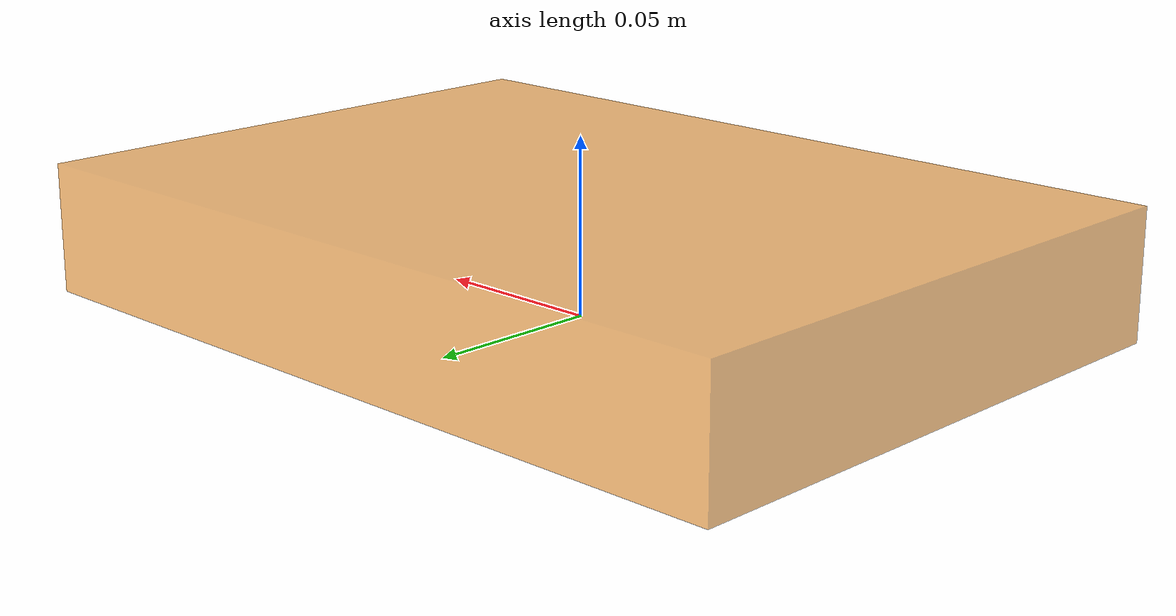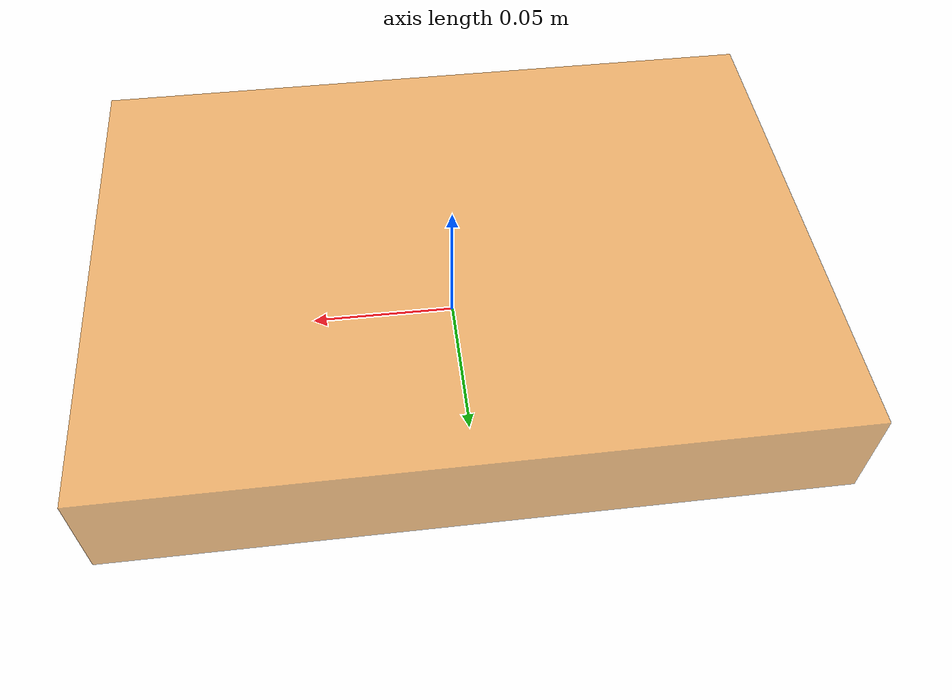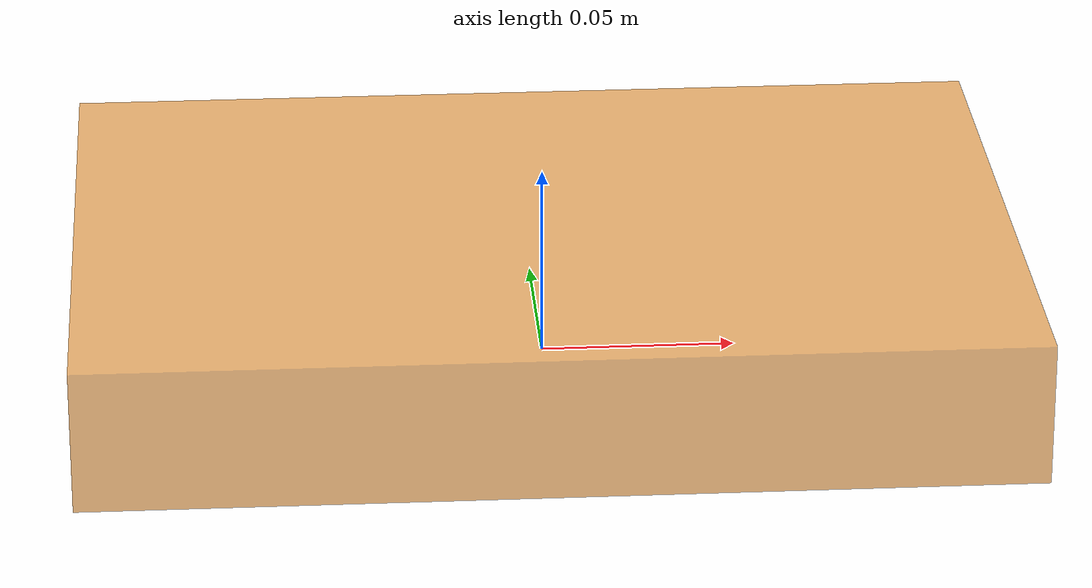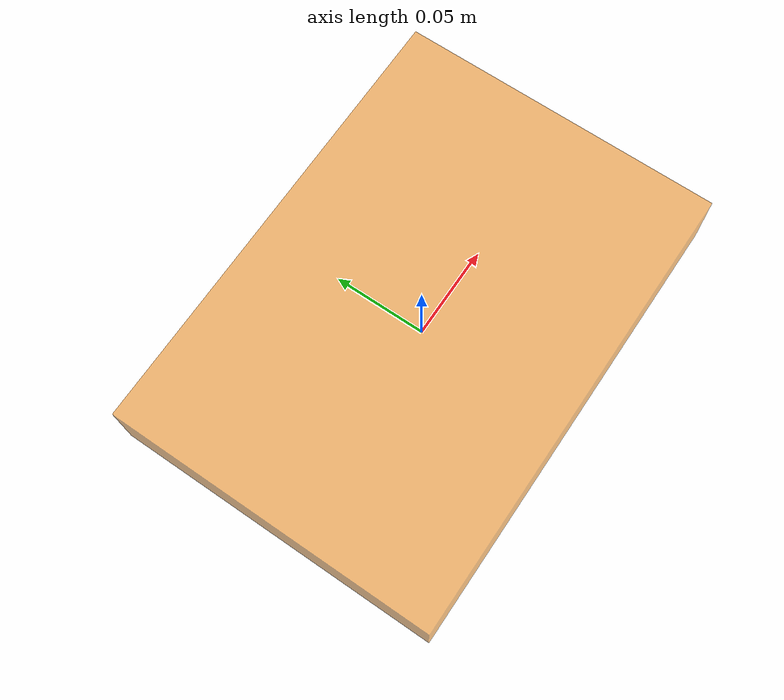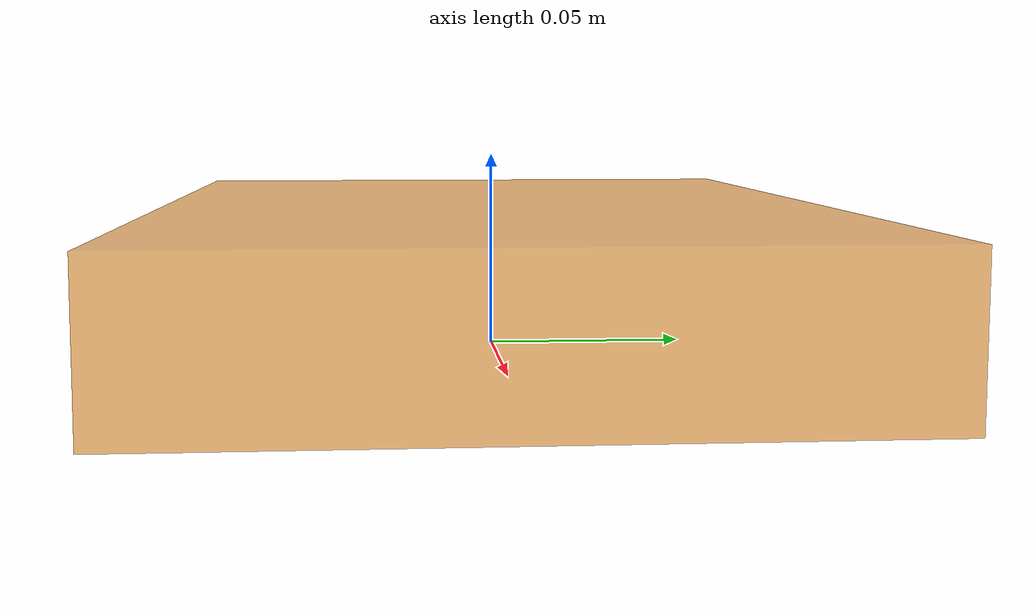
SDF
<?xml version="1.0"?>

<sdf version="1.5">
  <model name='vte_box'>
    <link name='vte_box_root_link'>
      <pose>0 0 0.0185 0 0 0</pose>
      <inertial>
	<!-- CoM -->
	<pose>0.0 0.0 0.0</pose>
        <mass>0.8</mass>
        <inertia>
          <ixx>0.0020179333333333336</ixx>
          <ixy>0.0</ixy>
          <ixz>0.0</ixz>
          <iyy>0.003931266666666666</iyy>
          <iyz>0.0</iyz>
          <izz>0.005766666666666667</izz>
        </inertia>
      </inertial>
      <collision name='vte_box_collision'>
        <geometry>
	  <box>
	    <size>0.24 0.17 0.037</size>
	  </box>
        </geometry>
	<surface>
          <friction>
            <ode>
              <mu>0.5</mu>
              <mu2>0.5</mu2>
            </ode>
          </friction>
	</surface>
      </collision>
      <visual name='vte_box_visual'>
        <geometry>
	  <box>
	    <size>0.24 0.17 0.037</size>
	  </box>
        </geometry>
        <material>
	  <script>
	    <uri>file://media/materials/scripts/gazebo.material</uri>
	    <name>Gazebo/Orange</name>
	  </script>
        </material>
	<transparency>0.4</transparency>
      </visual>
    </link>
    <plugin name="pose_publisher" filename='libgazebo_yarp_modelposepublisher.so'>
      <period>0.01</period>
    </plugin>
    <plugin name="point_cloud" filename='libgazebo_yarp_fakePointCloud.so'>
      <period>0.5</period>
      <observerOrigin>0 0.07 0.93</observerOrigin>
      <numPoints>100</numPoints>
      <meshPath>model://vte_box/box.off</meshPath>
      <outputPortSuffix>fakepointcloud:o</outputPortSuffix>
      <enableNoise>false</enableNoise>
      <noiseMean>0.0</noiseMean>
      <noiseStd>0.0</noiseStd>
      <showPointCloud>true</showPointCloud>
      <pointCloudColour>Gazebo/RedTransparent</pointCloudColour>
    </plugin>
  </model>
</sdf>
